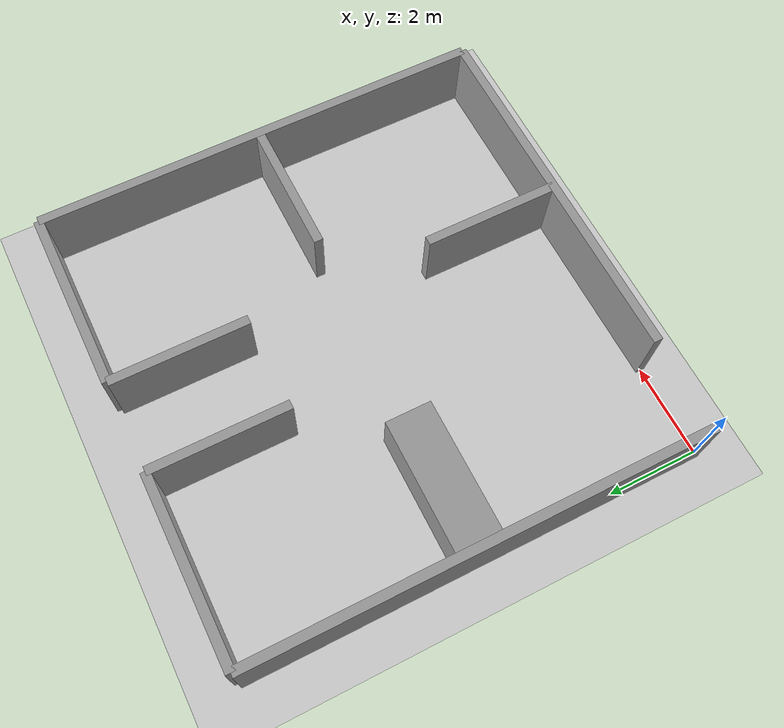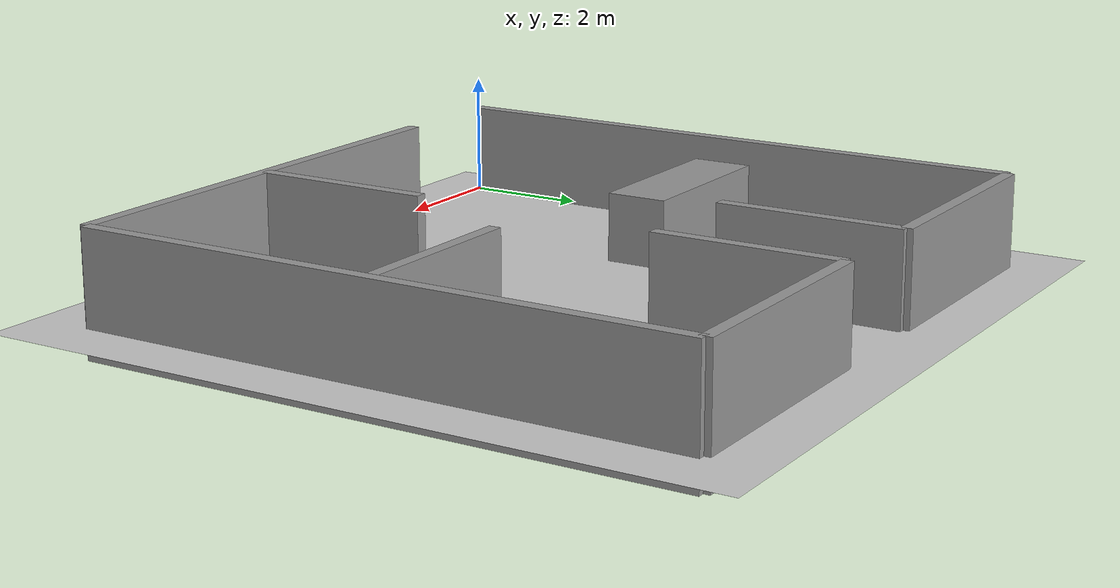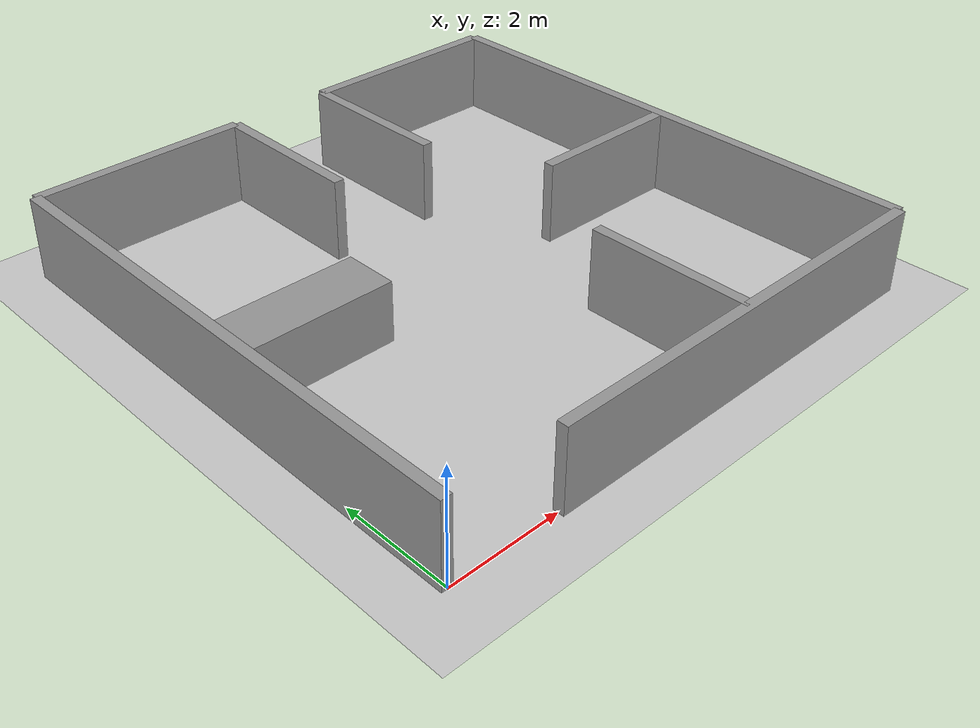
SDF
<sdf version="1.6">
 <world name="default">
  <light name="sun" type="directional">
   <pose>0 0 10 0 -0 0</pose>
   <diffuse>0.8 0.8 0.8 1</diffuse>
   <specular>0.2 0.2 0.2 1</specular>
   <attenuation>
    <range>1000</range>
    <constant>0.9</constant>
    <linear>0.01</linear>
    <quadratic>0.001</quadratic>
   </attenuation>
   <direction>-0.5 0.1 -0.9</direction>
  </light>
  <model name="ground_plane">
   <static>1</static>
   <link name="link">
    <collision name="collision">
     <geometry><plane><normal>0 0 1</normal><size>100 100</size></plane></geometry>
     <surface>
      <contact><collide_bitmask>65535</collide_bitmask></contact>
      <friction><ode><mu>100</mu><mu2>50</mu2></ode></friction>
     </surface>
    </collision>
    <visual name="visual">
     <cast_shadows>0</cast_shadows>
     <geometry><plane><normal>0 0 1</normal><size>100 100</size></plane></geometry>
     <material>
      <script><uri>file://media/materials/scripts/gazebo.material</uri><name>Gazebo/Grey</name></script>
     </material>
    </visual>
   </link>
  </model>
  <gravity>0 0 -9.8</gravity>
  <magnetic_field>6e-06 2.3e-05 -4.2e-05</magnetic_field>
  <atmosphere type="adiabatic"/>
  <physics name="default_physics" default="0" type="ode">
   <max_step_size>0.001</max_step_size>
   <real_time_factor>1</real_time_factor>
   <real_time_update_rate>1000</real_time_update_rate>
  </physics>
  <scene><ambient>0.4 0.4 0.4 1</ambient><background>0.7 0.7 0.7 1</background><shadows>1</shadows></scene>
  <audio><device>default</device></audio>
  <spherical_coordinates>
   <surface_model>EARTH_WGS84</surface_model>
   <latitude_deg>0</latitude_deg>
   <longitude_deg>0</longitude_deg>
   <elevation>0</elevation>
   <heading_deg>0</heading_deg>
  </spherical_coordinates>
  <model name="wall_3m_ok">
   <link name="link">
    <inertial>
     <mass>1</mass>
     <inertia>
      <ixx>0.166667</ixx>
      <ixy>0</ixy>
      <ixz>0</ixz>
      <iyy>0.166667</iyy>
      <iyz>0</iyz>
      <izz>0.166667</izz>
     </inertia>
    </inertial>
    <visual name="visual">
     <geometry><box><size>3 0.2 2</size></box></geometry>
     <material>
      <script><name>Gazebo/Grey</name><uri>file://media/materials/scripts/gazebo.material</uri></script>
      <shader type="vertex"><normal_map>__default__</normal_map></shader>
      <ambient>0.3 0.3 0.3 1</ambient>
      <diffuse>0.7 0.7 0.7 1</diffuse>
      <specular>0.01 0.01 0.01 1</specular>
      <emissive>0 0 0 1</emissive>
     </material>
    </visual>
    <collision name="collision">
     <geometry><box><size>3 0.2 2</size></box></geometry>
     <surface>
      <friction>
       <ode><mu>1</mu><mu2>1</mu2><fdir1>0 0 0</fdir1><slip1>0</slip1><slip2>0</slip2></ode>
       <torsional>
        <coefficient>1</coefficient>
        <patch_radius>0</patch_radius>
        <surface_radius>0</surface_radius>
        <use_patch_radius>1</use_patch_radius>
        <ode><slip>0</slip></ode>
       </torsional>
      </friction>
      <bounce><restitution_coefficient>0</restitution_coefficient><threshold>1e+06</threshold></bounce>
      <contact>
       <collide_without_contact>0</collide_without_contact>
       <collide_without_contact_bitmask>1</collide_without_contact_bitmask>
       <collide_bitmask>1</collide_bitmask>
       <ode>
        <soft_cfm>0</soft_cfm>
        <soft_erp>0.2</soft_erp>
        <kp>1e+13</kp>
        <kd>1</kd>
        <max_vel>0.01</max_vel>
        <min_depth>0</min_depth>
       </ode>
       <bullet>
        <split_impulse>1</split_impulse>
        <split_impulse_penetration_threshold>-0.01</split_impulse_penetration_threshold>
        <soft_cfm>0</soft_cfm>
        <soft_erp>0.2</soft_erp>
        <kp>1e+13</kp>
        <kd>1</kd>
       </bullet>
      </contact>
     </surface>
    </collision>
   </link>
   <static>0</static>
   <pose>4 8.5 0.5 0 -0 1.57</pose>
  </model>
  <model name="wall_3m_ok_clone">
   <link name="link">
    <inertial>
     <mass>1</mass>
     <inertia>
      <ixx>0.166667</ixx>
      <ixy>0</ixy>
      <ixz>0</ixz>
      <iyy>0.166667</iyy>
      <iyz>0</iyz>
      <izz>0.166667</izz>
     </inertia>
    </inertial>
    <visual name="visual">
     <geometry><box><size>3 0.2 2</size></box></geometry>
     <material>
      <script><name>Gazebo/Grey</name><uri>file://media/materials/scripts/gazebo.material</uri></script>
      <shader type="vertex"><normal_map>__default__</normal_map></shader>
      <ambient>0.3 0.3 0.3 1</ambient>
      <diffuse>0.7 0.7 0.7 1</diffuse>
      <specular>0.01 0.01 0.01 1</specular>
      <emissive>0 0 0 1</emissive>
     </material>
    </visual>
    <collision name="collision">
     <geometry><box><size>3 0.2 2</size></box></geometry>
     <surface>
      <friction>
       <ode><mu>1</mu><mu2>1</mu2><fdir1>0 0 0</fdir1><slip1>0</slip1><slip2>0</slip2></ode>
       <torsional>
        <coefficient>1</coefficient>
        <patch_radius>0</patch_radius>
        <surface_radius>0</surface_radius>
        <use_patch_radius>1</use_patch_radius>
        <ode><slip>0</slip></ode>
       </torsional>
      </friction>
      <bounce><restitution_coefficient>0</restitution_coefficient><threshold>1e+06</threshold></bounce>
      <contact>
       <collide_without_contact>0</collide_without_contact>
       <collide_without_contact_bitmask>1</collide_without_contact_bitmask>
       <collide_bitmask>1</collide_bitmask>
       <ode>
        <soft_cfm>0</soft_cfm>
        <soft_erp>0.2</soft_erp>
        <kp>1e+13</kp>
        <kd>1</kd>
        <max_vel>0.01</max_vel>
        <min_depth>0</min_depth>
       </ode>
       <bullet>
        <split_impulse>1</split_impulse>
        <split_impulse_penetration_threshold>-0.01</split_impulse_penetration_threshold>
        <soft_cfm>0</soft_cfm>
        <soft_erp>0.2</soft_erp>
        <kp>1e+13</kp>
        <kd>1</kd>
       </bullet>
      </contact>
     </surface>
    </collision>
   </link>
   <static>0</static>
   <pose>6 8.5 0.5 0 -0 1.57</pose>
  </model>
  <model name="wall_3m_ok_clone_0">
   <link name="link">
    <inertial>
     <mass>1</mass>
     <inertia>
      <ixx>0.166667</ixx>
      <ixy>0</ixy>
      <ixz>0</ixz>
      <iyy>0.166667</iyy>
      <iyz>0</iyz>
      <izz>0.166667</izz>
     </inertia>
    </inertial>
    <visual name="visual">
     <geometry><box><size>3 0.2 2</size></box></geometry>
     <material>
      <script><name>Gazebo/Grey</name><uri>file://media/materials/scripts/gazebo.material</uri></script>
      <shader type="vertex"><normal_map>__default__</normal_map></shader>
      <ambient>0.3 0.3 0.3 1</ambient>
      <diffuse>0.7 0.7 0.7 1</diffuse>
      <specular>0.01 0.01 0.01 1</specular>
      <emissive>0 0 0 1</emissive>
     </material>
    </visual>
    <collision name="collision">
     <geometry><box><size>3 0.2 2</size></box></geometry>
     <surface>
      <friction>
       <ode><mu>1</mu><mu2>1</mu2><fdir1>0 0 0</fdir1><slip1>0</slip1><slip2>0</slip2></ode>
       <torsional>
        <coefficient>1</coefficient>
        <patch_radius>0</patch_radius>
        <surface_radius>0</surface_radius>
        <use_patch_radius>1</use_patch_radius>
        <ode><slip>0</slip></ode>
       </torsional>
      </friction>
      <bounce><restitution_coefficient>0</restitution_coefficient><threshold>1e+06</threshold></bounce>
      <contact>
       <collide_without_contact>0</collide_without_contact>
       <collide_without_contact_bitmask>1</collide_without_contact_bitmask>
       <collide_bitmask>1</collide_bitmask>
       <ode>
        <soft_cfm>0</soft_cfm>
        <soft_erp>0.2</soft_erp>
        <kp>1e+13</kp>
        <kd>1</kd>
        <max_vel>0.01</max_vel>
        <min_depth>0</min_depth>
       </ode>
       <bullet>
        <split_impulse>1</split_impulse>
        <split_impulse_penetration_threshold>-0.01</split_impulse_penetration_threshold>
        <soft_cfm>0</soft_cfm>
        <soft_erp>0.2</soft_erp>
        <kp>1e+13</kp>
        <kd>1</kd>
       </bullet>
      </contact>
     </surface>
    </collision>
   </link>
   <static>0</static>
   <pose>8.5 5 0.499995 0 -0 0</pose>
  </model>
  <model name="wall_4m_ok">
   <link name="link">
    <inertial>
     <mass>1</mass>
     <inertia>
      <ixx>0.166667</ixx>
      <ixy>0</ixy>
      <ixz>0</ixz>
      <iyy>0.166667</iyy>
      <iyz>0</iyz>
      <izz>0.166667</izz>
     </inertia>
    </inertial>
    <visual name="visual">
     <geometry><box><size>4 0.2 2</size></box></geometry>
     <material>
      <script><name>Gazebo/Grey</name><uri>file://media/materials/scripts/gazebo.material</uri></script>
      <shader type="vertex"><normal_map>__default__</normal_map></shader>
      <ambient>0.3 0.3 0.3 1</ambient>
      <diffuse>0.7 0.7 0.7 1</diffuse>
      <specular>0.01 0.01 0.01 1</specular>
      <emissive>0 0 0 1</emissive>
     </material>
    </visual>
    <collision name="collision">
     <geometry><box><size>4 0.2 2</size></box></geometry>
     <surface>
      <friction>
       <ode><mu>1</mu><mu2>1</mu2><fdir1>0 0 0</fdir1><slip1>0</slip1><slip2>0</slip2></ode>
       <torsional>
        <coefficient>1</coefficient>
        <patch_radius>0</patch_radius>
        <surface_radius>0</surface_radius>
        <use_patch_radius>1</use_patch_radius>
        <ode><slip>0</slip></ode>
       </torsional>
      </friction>
      <bounce><restitution_coefficient>0</restitution_coefficient><threshold>1e+06</threshold></bounce>
      <contact>
       <collide_without_contact>0</collide_without_contact>
       <collide_without_contact_bitmask>1</collide_without_contact_bitmask>
       <collide_bitmask>1</collide_bitmask>
       <ode>
        <soft_cfm>0</soft_cfm>
        <soft_erp>0.2</soft_erp>
        <kp>1e+13</kp>
        <kd>1</kd>
        <max_vel>0.01</max_vel>
        <min_depth>0</min_depth>
       </ode>
       <bullet>
        <split_impulse>1</split_impulse>
        <split_impulse_penetration_threshold>-0.01</split_impulse_penetration_threshold>
        <soft_cfm>0</soft_cfm>
        <soft_erp>0.2</soft_erp>
        <kp>1e+13</kp>
        <kd>1</kd>
       </bullet>
      </contact>
     </surface>
    </collision>
   </link>
   <static>0</static>
   <pose>2 10 0.5 0 -0 0</pose>
  </model>
  <model name="wall_4m_ok_clone">
   <link name="link">
    <inertial>
     <mass>1</mass>
     <inertia>
      <ixx>0.166667</ixx>
      <ixy>0</ixy>
      <ixz>0</ixz>
      <iyy>0.166667</iyy>
      <iyz>0</iyz>
      <izz>0.166667</izz>
     </inertia>
    </inertial>
    <visual name="visual">
     <geometry><box><size>4 0.2 2</size></box></geometry>
     <material>
      <script><name>Gazebo/Grey</name><uri>file://media/materials/scripts/gazebo.material</uri></script>
      <shader type="vertex"><normal_map>__default__</normal_map></shader>
      <ambient>0.3 0.3 0.3 1</ambient>
      <diffuse>0.7 0.7 0.7 1</diffuse>
      <specular>0.01 0.01 0.01 1</specular>
      <emissive>0 0 0 1</emissive>
     </material>
    </visual>
    <collision name="collision">
     <geometry><box><size>4 0.2 2</size></box></geometry>
     <surface>
      <friction>
       <ode><mu>1</mu><mu2>1</mu2><fdir1>0 0 0</fdir1><slip1>0</slip1><slip2>0</slip2></ode>
       <torsional>
        <coefficient>1</coefficient>
        <patch_radius>0</patch_radius>
        <surface_radius>0</surface_radius>
        <use_patch_radius>1</use_patch_radius>
        <ode><slip>0</slip></ode>
       </torsional>
      </friction>
      <bounce><restitution_coefficient>0</restitution_coefficient><threshold>1e+06</threshold></bounce>
      <contact>
       <collide_without_contact>0</collide_without_contact>
       <collide_without_contact_bitmask>1</collide_without_contact_bitmask>
       <collide_bitmask>1</collide_bitmask>
       <ode>
        <soft_cfm>0</soft_cfm>
        <soft_erp>0.2</soft_erp>
        <kp>1e+13</kp>
        <kd>1</kd>
        <max_vel>0.01</max_vel>
        <min_depth>0</min_depth>
       </ode>
       <bullet>
        <split_impulse>1</split_impulse>
        <split_impulse_penetration_threshold>-0.01</split_impulse_penetration_threshold>
        <soft_cfm>0</soft_cfm>
        <soft_erp>0.2</soft_erp>
        <kp>1e+13</kp>
        <kd>1</kd>
       </bullet>
      </contact>
     </surface>
    </collision>
   </link>
   <static>0</static>
   <pose>8 10 0.5 0 -0 0</pose>
  </model>
  <model name="wall_10m_ok">
   <link name="link">
    <inertial>
     <mass>1</mass>
     <inertia>
      <ixx>0.166667</ixx>
      <ixy>0</ixy>
      <ixz>0</ixz>
      <iyy>0.166667</iyy>
      <iyz>0</iyz>
      <izz>0.166667</izz>
     </inertia>
    </inertial>
    <visual name="visual">
     <geometry><box><size>10 0.2 2</size></box></geometry>
     <material>
      <script><name>Gazebo/Grey</name><uri>file://media/materials/scripts/gazebo.material</uri></script>
      <shader type="vertex"><normal_map>__default__</normal_map></shader>
      <ambient>0.3 0.3 0.3 1</ambient>
      <diffuse>0.7 0.7 0.7 1</diffuse>
      <specular>0.01 0.01 0.01 1</specular>
      <emissive>0 0 0 1</emissive>
     </material>
    </visual>
    <collision name="collision">
     <geometry><box><size>10 0.2 2</size></box></geometry>
     <surface>
      <friction>
       <ode><mu>1</mu><mu2>1</mu2><fdir1>0 0 0</fdir1><slip1>0</slip1><slip2>0</slip2></ode>
       <torsional>
        <coefficient>1</coefficient>
        <patch_radius>0</patch_radius>
        <surface_radius>0</surface_radius>
        <use_patch_radius>1</use_patch_radius>
        <ode><slip>0</slip></ode>
       </torsional>
      </friction>
      <bounce><restitution_coefficient>0</restitution_coefficient><threshold>1e+06</threshold></bounce>
      <contact>
       <collide_without_contact>0</collide_without_contact>
       <collide_without_contact_bitmask>1</collide_without_contact_bitmask>
       <collide_bitmask>1</collide_bitmask>
       <ode>
        <soft_cfm>0</soft_cfm>
        <soft_erp>0.2</soft_erp>
        <kp>1e+13</kp>
        <kd>1</kd>
        <max_vel>0.01</max_vel>
        <min_depth>0</min_depth>
       </ode>
       <bullet>
        <split_impulse>1</split_impulse>
        <split_impulse_penetration_threshold>-0.01</split_impulse_penetration_threshold>
        <soft_cfm>0</soft_cfm>
        <soft_erp>0.2</soft_erp>
        <kp>1e+13</kp>
        <kd>1</kd>
       </bullet>
      </contact>
     </surface>
    </collision>
   </link>
   <static>0</static>
   <pose>0 5 0.5 0 -0 1.57</pose>
  </model>
  <model name="wall_10m_ok_clone">
   <link name="link">
    <inertial>
     <mass>1</mass>
     <inertia>
      <ixx>0.166667</ixx>
      <ixy>0</ixy>
      <ixz>0</ixz>
      <iyy>0.166667</iyy>
      <iyz>0</iyz>
      <izz>0.166667</izz>
     </inertia>
    </inertial>
    <visual name="visual">
     <geometry><box><size>10 0.2 2</size></box></geometry>
     <material>
      <script><name>Gazebo/Grey</name><uri>file://media/materials/scripts/gazebo.material</uri></script>
      <shader type="vertex"><normal_map>__default__</normal_map></shader>
      <ambient>0.3 0.3 0.3 1</ambient>
      <diffuse>0.7 0.7 0.7 1</diffuse>
      <specular>0.01 0.01 0.01 1</specular>
      <emissive>0 0 0 1</emissive>
     </material>
    </visual>
    <collision name="collision">
     <geometry><box><size>10 0.2 2</size></box></geometry>
     <surface>
      <friction>
       <ode><mu>1</mu><mu2>1</mu2><fdir1>0 0 0</fdir1><slip1>0</slip1><slip2>0</slip2></ode>
       <torsional>
        <coefficient>1</coefficient>
        <patch_radius>0</patch_radius>
        <surface_radius>0</surface_radius>
        <use_patch_radius>1</use_patch_radius>
        <ode><slip>0</slip></ode>
       </torsional>
      </friction>
      <bounce><restitution_coefficient>0</restitution_coefficient><threshold>1e+06</threshold></bounce>
      <contact>
       <collide_without_contact>0</collide_without_contact>
       <collide_without_contact_bitmask>1</collide_without_contact_bitmask>
       <collide_bitmask>1</collide_bitmask>
       <ode>
        <soft_cfm>0</soft_cfm>
        <soft_erp>0.2</soft_erp>
        <kp>1e+13</kp>
        <kd>1</kd>
        <max_vel>0.01</max_vel>
        <min_depth>0</min_depth>
       </ode>
       <bullet>
        <split_impulse>1</split_impulse>
        <split_impulse_penetration_threshold>-0.01</split_impulse_penetration_threshold>
        <soft_cfm>0</soft_cfm>
        <soft_erp>0.2</soft_erp>
        <kp>1e+13</kp>
        <kd>1</kd>
       </bullet>
      </contact>
     </surface>
    </collision>
   </link>
   <static>0</static>
   <pose>10 5 0.5 0 -0 1.57</pose>
  </model>
  <model name="wall_8m_ok">
   <link name="link">
    <inertial>
     <mass>1</mass>
     <inertia>
      <ixx>0.166667</ixx>
      <ixy>0</ixy>
      <ixz>0</ixz>
      <iyy>0.166667</iyy>
      <iyz>0</iyz>
      <izz>0.166667</izz>
     </inertia>
    </inertial>
    <visual name="visual">
     <geometry><box><size>8 0.2 2</size></box></geometry>
     <material>
      <script><name>Gazebo/Grey</name><uri>file://media/materials/scripts/gazebo.material</uri></script>
      <shader type="vertex"><normal_map>__default__</normal_map></shader>
      <ambient>0.3 0.3 0.3 1</ambient>
      <diffuse>0.7 0.7 0.7 1</diffuse>
      <specular>0.01 0.01 0.01 1</specular>
      <emissive>0 0 0 1</emissive>
     </material>
    </visual>
    <collision name="collision">
     <geometry><box><size>8 0.2 2</size></box></geometry>
     <surface>
      <friction>
       <ode><mu>1</mu><mu2>1</mu2><fdir1>0 0 0</fdir1><slip1>0</slip1><slip2>0</slip2></ode>
       <torsional>
        <coefficient>1</coefficient>
        <patch_radius>0</patch_radius>
        <surface_radius>0</surface_radius>
        <use_patch_radius>1</use_patch_radius>
        <ode><slip>0</slip></ode>
       </torsional>
      </friction>
      <bounce><restitution_coefficient>0</restitution_coefficient><threshold>1e+06</threshold></bounce>
      <contact>
       <collide_without_contact>0</collide_without_contact>
       <collide_without_contact_bitmask>1</collide_without_contact_bitmask>
       <collide_bitmask>1</collide_bitmask>
       <ode>
        <soft_cfm>0</soft_cfm>
        <soft_erp>0.2</soft_erp>
        <kp>1e+13</kp>
        <kd>1</kd>
        <max_vel>0.01</max_vel>
        <min_depth>0</min_depth>
       </ode>
       <bullet>
        <split_impulse>1</split_impulse>
        <split_impulse_penetration_threshold>-0.01</split_impulse_penetration_threshold>
        <soft_cfm>0</soft_cfm>
        <soft_erp>0.2</soft_erp>
        <kp>1e+13</kp>
        <kd>1</kd>
       </bullet>
      </contact>
     </surface>
    </collision>
   </link>
   <static>0</static>
   <pose>6 0 0.5 0 -0 0</pose>
  </model>
  <model name="wall_3m_ok_clone_clone">
   <link name="link">
    <inertial>
     <mass>1</mass>
     <inertia>
      <ixx>0.166667</ixx>
      <ixy>0</ixy>
      <ixz>0</ixz>
      <iyy>0.166667</iyy>
      <iyz>0</iyz>
      <izz>0.166667</izz>
     </inertia>
    </inertial>
    <visual name="visual">
     <geometry><box><size>3 0.2 2</size></box></geometry>
     <material>
      <script><name>Gazebo/Grey</name><uri>file://media/materials/scripts/gazebo.material</uri></script>
      <shader type="vertex"><normal_map>__default__</normal_map></shader>
      <ambient>0.3 0.3 0.3 1</ambient>
      <diffuse>0.7 0.7 0.7 1</diffuse>
      <specular>0.01 0.01 0.01 1</specular>
      <emissive>0 0 0 1</emissive>
     </material>
    </visual>
    <collision name="collision">
     <geometry><box><size>3 0.2 2</size></box></geometry>
     <surface>
      <friction>
       <ode><mu>1</mu><mu2>1</mu2><fdir1>0 0 0</fdir1><slip1>0</slip1><slip2>0</slip2></ode>
       <torsional>
        <coefficient>1</coefficient>
        <patch_radius>0</patch_radius>
        <surface_radius>0</surface_radius>
        <use_patch_radius>1</use_patch_radius>
        <ode><slip>0</slip></ode>
       </torsional>
      </friction>
      <bounce><restitution_coefficient>0</restitution_coefficient><threshold>1e+06</threshold></bounce>
      <contact>
       <collide_without_contact>0</collide_without_contact>
       <collide_without_contact_bitmask>1</collide_without_contact_bitmask>
       <collide_bitmask>1</collide_bitmask>
       <ode>
        <soft_cfm>0</soft_cfm>
        <soft_erp>0.2</soft_erp>
        <kp>1e+13</kp>
        <kd>1</kd>
        <max_vel>0.01</max_vel>
        <min_depth>0</min_depth>
       </ode>
       <bullet>
        <split_impulse>1</split_impulse>
        <split_impulse_penetration_threshold>-0.01</split_impulse_penetration_threshold>
        <soft_cfm>0</soft_cfm>
        <soft_erp>0.2</soft_erp>
        <kp>1e+13</kp>
        <kd>1</kd>
       </bullet>
      </contact>
     </surface>
    </collision>
   </link>
   <static>0</static>
   <pose>6 1.5 0.5 0 -0 1.57</pose>
  </model>
  <model name="wall_3_07_ok">
   <link name="link">
    <inertial>
     <mass>1</mass>
     <inertia>
      <ixx>0.166667</ixx>
      <ixy>0</ixy>
      <ixz>0</ixz>
      <iyy>0.166667</iyy>
      <iyz>0</iyz>
      <izz>0.166667</izz>
     </inertia>
    </inertial>
    <visual name="visual">
     <geometry><box><size>3 1 1.2</size></box></geometry>
     <material>
      <script><name>Gazebo/Grey</name><uri>file://media/materials/scripts/gazebo.material</uri></script>
      <shader type="vertex"><normal_map>__default__</normal_map></shader>
      <ambient>0.3 0.3 0.3 1</ambient>
      <diffuse>0.7 0.7 0.7 1</diffuse>
      <specular>0.01 0.01 0.01 1</specular>
      <emissive>0 0 0 1</emissive>
     </material>
    </visual>
    <collision name="collision">
     <geometry><box><size>3 1 1.2</size></box></geometry>
     <surface>
      <friction>
       <ode><mu>1</mu><mu2>1</mu2><fdir1>0 0 0</fdir1><slip1>0</slip1><slip2>0</slip2></ode>
       <torsional>
        <coefficient>1</coefficient>
        <patch_radius>0</patch_radius>
        <surface_radius>0</surface_radius>
        <use_patch_radius>1</use_patch_radius>
        <ode><slip>0</slip></ode>
       </torsional>
      </friction>
      <bounce><restitution_coefficient>0</restitution_coefficient><threshold>1e+06</threshold></bounce>
      <contact>
       <collide_without_contact>0</collide_without_contact>
       <collide_without_contact_bitmask>1</collide_without_contact_bitmask>
       <collide_bitmask>1</collide_bitmask>
       <ode>
        <soft_cfm>0</soft_cfm>
        <soft_erp>0.2</soft_erp>
        <kp>1e+13</kp>
        <kd>1</kd>
        <max_vel>0.01</max_vel>
        <min_depth>0</min_depth>
       </ode>
       <bullet>
        <split_impulse>1</split_impulse>
        <split_impulse_penetration_threshold>-0.01</split_impulse_penetration_threshold>
        <soft_cfm>0</soft_cfm>
        <soft_erp>0.2</soft_erp>
        <kp>1e+13</kp>
        <kd>1</kd>
       </bullet>
      </contact>
     </surface>
    </collision>
   </link>
   <static>0</static>
   <pose>1.5 5 0.5 0 -0 0</pose>
  </model>
 </world>
</sdf>
